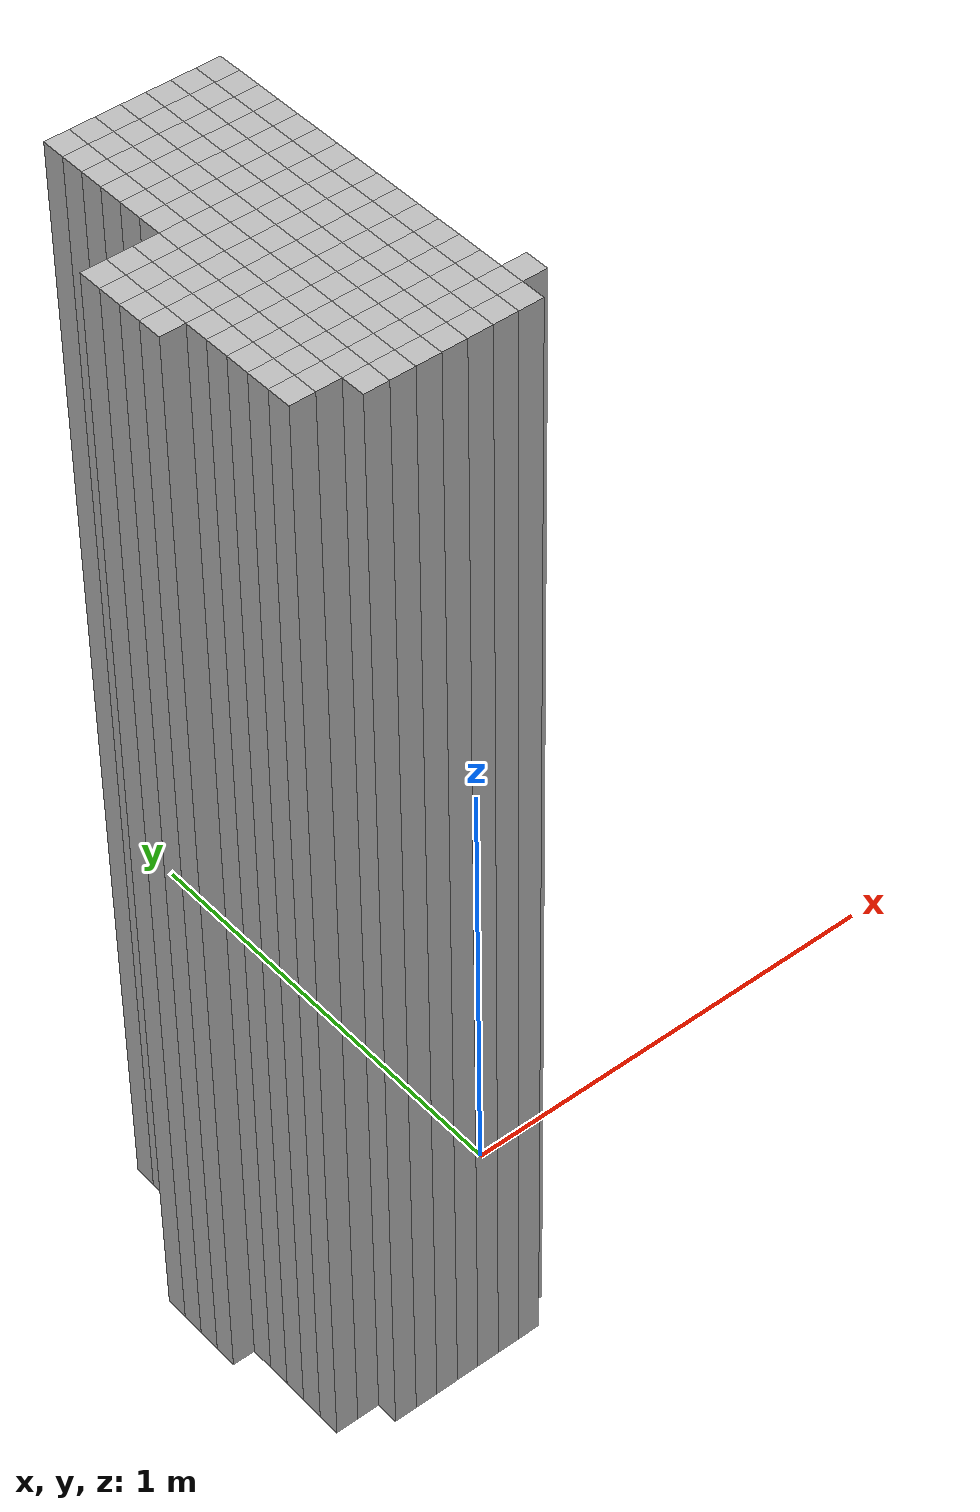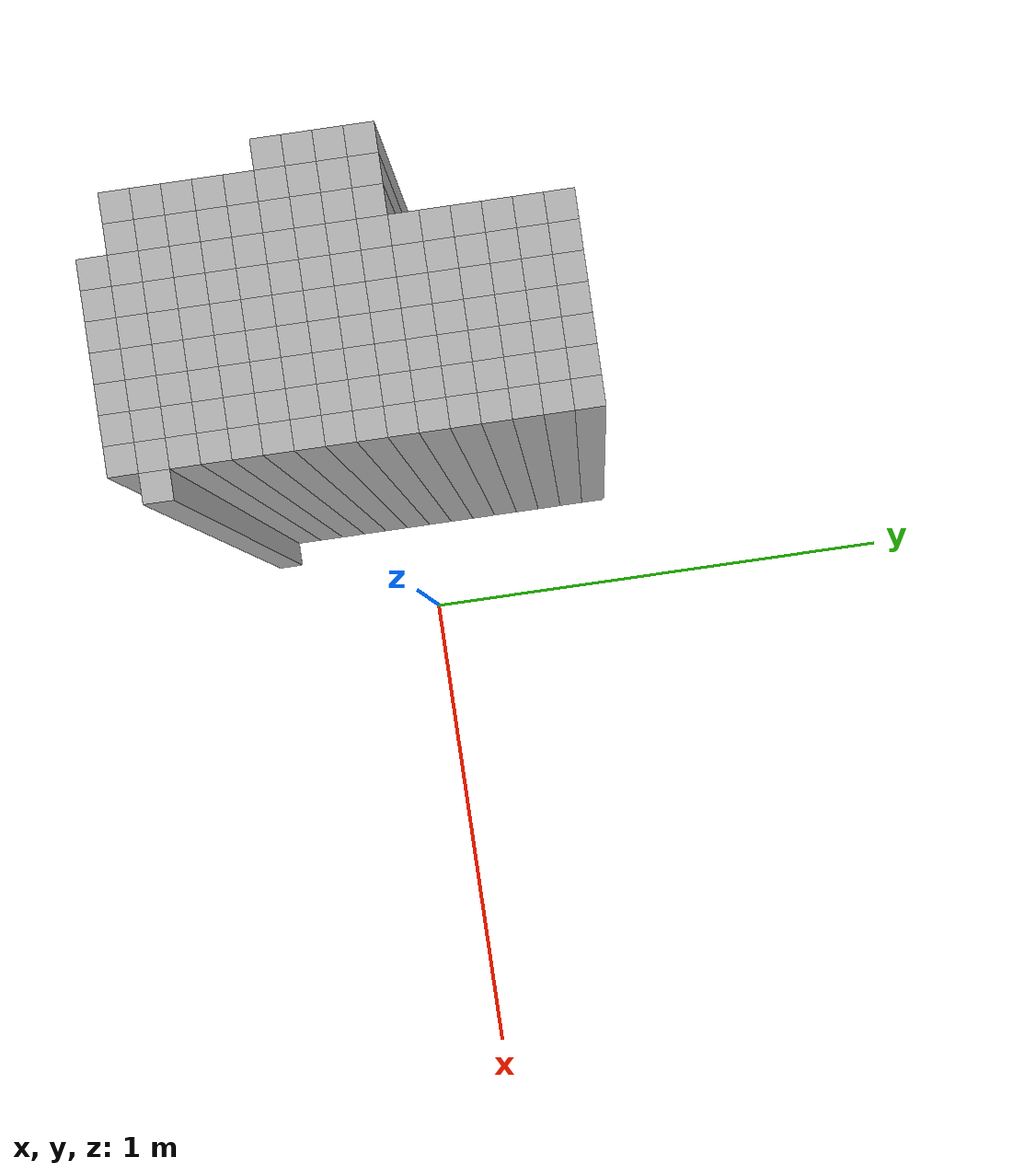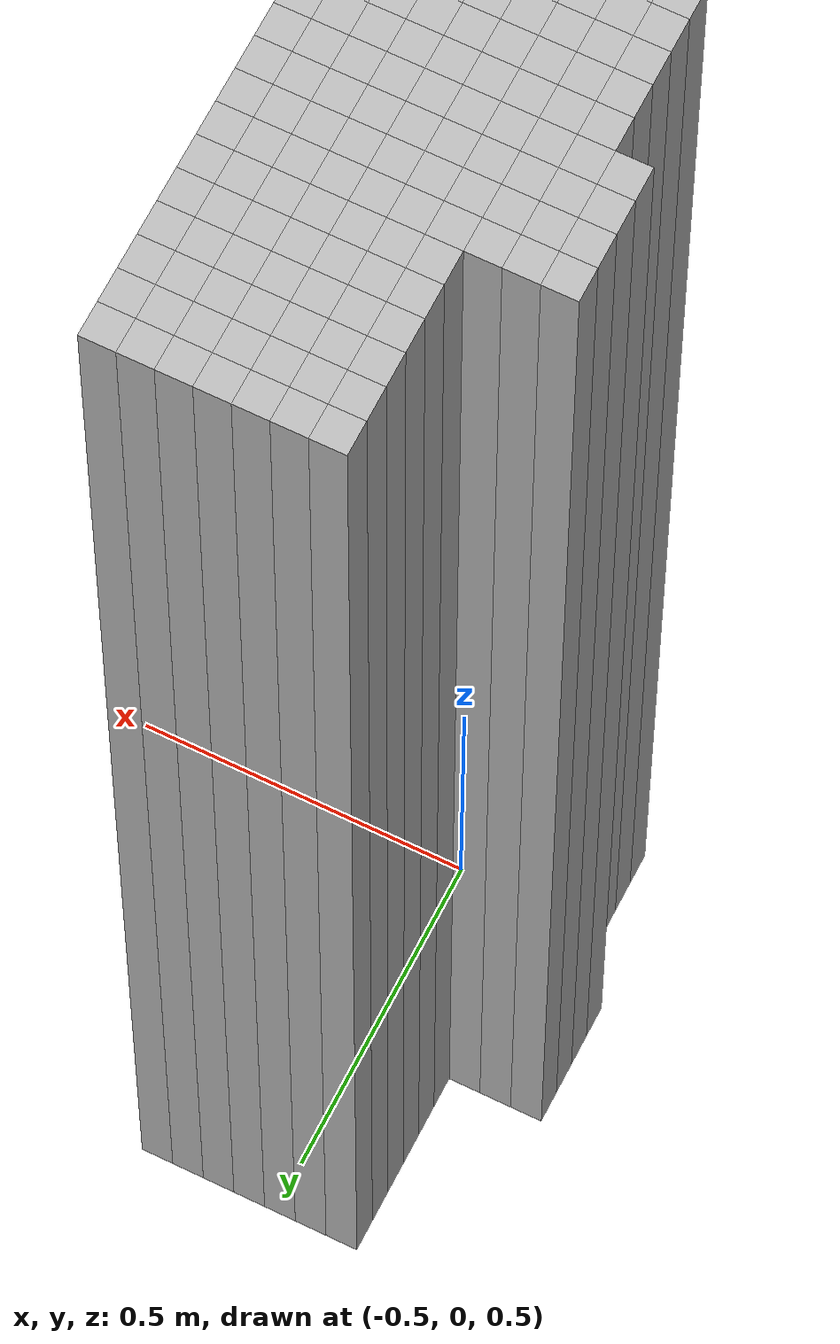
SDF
<sdf version="1.9">
 <world name="map_world">
  <model name="wall_213_146">
   <static>true</static>
   <pose>-0.511 0.380 1.250 0 0 0</pose>
   <link name="link">
    <collision name="collision"><geometry><box><size>0.050 0.050 2.500</size></box></geometry></collision>
    <visual name="visual"><geometry><box><size>0.050 0.050 2.500</size></box></geometry></visual>
   </link>
  </model>
  <model name="wall_214_146">
   <static>true</static>
   <pose>-0.461 0.380 1.250 0 0 0</pose>
   <link name="link">
    <collision name="collision"><geometry><box><size>0.050 0.050 2.500</size></box></geometry></collision>
    <visual name="visual"><geometry><box><size>0.050 0.050 2.500</size></box></geometry></visual>
   </link>
  </model>
  <model name="wall_215_146">
   <static>true</static>
   <pose>-0.411 0.380 1.250 0 0 0</pose>
   <link name="link">
    <collision name="collision"><geometry><box><size>0.050 0.050 2.500</size></box></geometry></collision>
    <visual name="visual"><geometry><box><size>0.050 0.050 2.500</size></box></geometry></visual>
   </link>
  </model>
  <model name="wall_216_146">
   <static>true</static>
   <pose>-0.361 0.380 1.250 0 0 0</pose>
   <link name="link">
    <collision name="collision"><geometry><box><size>0.050 0.050 2.500</size></box></geometry></collision>
    <visual name="visual"><geometry><box><size>0.050 0.050 2.500</size></box></geometry></visual>
   </link>
  </model>
  <model name="wall_217_146">
   <static>true</static>
   <pose>-0.311 0.380 1.250 0 0 0</pose>
   <link name="link">
    <collision name="collision"><geometry><box><size>0.050 0.050 2.500</size></box></geometry></collision>
    <visual name="visual"><geometry><box><size>0.050 0.050 2.500</size></box></geometry></visual>
   </link>
  </model>
  <model name="wall_218_146">
   <static>true</static>
   <pose>-0.261 0.380 1.250 0 0 0</pose>
   <link name="link">
    <collision name="collision"><geometry><box><size>0.050 0.050 2.500</size></box></geometry></collision>
    <visual name="visual"><geometry><box><size>0.050 0.050 2.500</size></box></geometry></visual>
   </link>
  </model>
  <model name="wall_219_146">
   <static>true</static>
   <pose>-0.211 0.380 1.250 0 0 0</pose>
   <link name="link">
    <collision name="collision"><geometry><box><size>0.050 0.050 2.500</size></box></geometry></collision>
    <visual name="visual"><geometry><box><size>0.050 0.050 2.500</size></box></geometry></visual>
   </link>
  </model>
  <model name="wall_213_147">
   <static>true</static>
   <pose>-0.511 0.330 1.250 0 0 0</pose>
   <link name="link">
    <collision name="collision"><geometry><box><size>0.050 0.050 2.500</size></box></geometry></collision>
    <visual name="visual"><geometry><box><size>0.050 0.050 2.500</size></box></geometry></visual>
   </link>
  </model>
  <model name="wall_214_147">
   <static>true</static>
   <pose>-0.461 0.330 1.250 0 0 0</pose>
   <link name="link">
    <collision name="collision"><geometry><box><size>0.050 0.050 2.500</size></box></geometry></collision>
    <visual name="visual"><geometry><box><size>0.050 0.050 2.500</size></box></geometry></visual>
   </link>
  </model>
  <model name="wall_215_147">
   <static>true</static>
   <pose>-0.411 0.330 1.250 0 0 0</pose>
   <link name="link">
    <collision name="collision"><geometry><box><size>0.050 0.050 2.500</size></box></geometry></collision>
    <visual name="visual"><geometry><box><size>0.050 0.050 2.500</size></box></geometry></visual>
   </link>
  </model>
  <model name="wall_216_147">
   <static>true</static>
   <pose>-0.361 0.330 1.250 0 0 0</pose>
   <link name="link">
    <collision name="collision"><geometry><box><size>0.050 0.050 2.500</size></box></geometry></collision>
    <visual name="visual"><geometry><box><size>0.050 0.050 2.500</size></box></geometry></visual>
   </link>
  </model>
  <model name="wall_217_147">
   <static>true</static>
   <pose>-0.311 0.330 1.250 0 0 0</pose>
   <link name="link">
    <collision name="collision"><geometry><box><size>0.050 0.050 2.500</size></box></geometry></collision>
    <visual name="visual"><geometry><box><size>0.050 0.050 2.500</size></box></geometry></visual>
   </link>
  </model>
  <model name="wall_218_147">
   <static>true</static>
   <pose>-0.261 0.330 1.250 0 0 0</pose>
   <link name="link">
    <collision name="collision"><geometry><box><size>0.050 0.050 2.500</size></box></geometry></collision>
    <visual name="visual"><geometry><box><size>0.050 0.050 2.500</size></box></geometry></visual>
   </link>
  </model>
  <model name="wall_219_147">
   <static>true</static>
   <pose>-0.211 0.330 1.250 0 0 0</pose>
   <link name="link">
    <collision name="collision"><geometry><box><size>0.050 0.050 2.500</size></box></geometry></collision>
    <visual name="visual"><geometry><box><size>0.050 0.050 2.500</size></box></geometry></visual>
   </link>
  </model>
  <model name="wall_213_148">
   <static>true</static>
   <pose>-0.511 0.280 1.250 0 0 0</pose>
   <link name="link">
    <collision name="collision"><geometry><box><size>0.050 0.050 2.500</size></box></geometry></collision>
    <visual name="visual"><geometry><box><size>0.050 0.050 2.500</size></box></geometry></visual>
   </link>
  </model>
  <model name="wall_214_148">
   <static>true</static>
   <pose>-0.461 0.280 1.250 0 0 0</pose>
   <link name="link">
    <collision name="collision"><geometry><box><size>0.050 0.050 2.500</size></box></geometry></collision>
    <visual name="visual"><geometry><box><size>0.050 0.050 2.500</size></box></geometry></visual>
   </link>
  </model>
  <model name="wall_215_148">
   <static>true</static>
   <pose>-0.411 0.280 1.250 0 0 0</pose>
   <link name="link">
    <collision name="collision"><geometry><box><size>0.050 0.050 2.500</size></box></geometry></collision>
    <visual name="visual"><geometry><box><size>0.050 0.050 2.500</size></box></geometry></visual>
   </link>
  </model>
  <model name="wall_216_148">
   <static>true</static>
   <pose>-0.361 0.280 1.250 0 0 0</pose>
   <link name="link">
    <collision name="collision"><geometry><box><size>0.050 0.050 2.500</size></box></geometry></collision>
    <visual name="visual"><geometry><box><size>0.050 0.050 2.500</size></box></geometry></visual>
   </link>
  </model>
  <model name="wall_217_148">
   <static>true</static>
   <pose>-0.311 0.280 1.250 0 0 0</pose>
   <link name="link">
    <collision name="collision"><geometry><box><size>0.050 0.050 2.500</size></box></geometry></collision>
    <visual name="visual"><geometry><box><size>0.050 0.050 2.500</size></box></geometry></visual>
   </link>
  </model>
  <model name="wall_218_148">
   <static>true</static>
   <pose>-0.261 0.280 1.250 0 0 0</pose>
   <link name="link">
    <collision name="collision"><geometry><box><size>0.050 0.050 2.500</size></box></geometry></collision>
    <visual name="visual"><geometry><box><size>0.050 0.050 2.500</size></box></geometry></visual>
   </link>
  </model>
  <model name="wall_219_148">
   <static>true</static>
   <pose>-0.211 0.280 1.250 0 0 0</pose>
   <link name="link">
    <collision name="collision"><geometry><box><size>0.050 0.050 2.500</size></box></geometry></collision>
    <visual name="visual"><geometry><box><size>0.050 0.050 2.500</size></box></geometry></visual>
   </link>
  </model>
  <model name="wall_213_149">
   <static>true</static>
   <pose>-0.511 0.230 1.250 0 0 0</pose>
   <link name="link">
    <collision name="collision"><geometry><box><size>0.050 0.050 2.500</size></box></geometry></collision>
    <visual name="visual"><geometry><box><size>0.050 0.050 2.500</size></box></geometry></visual>
   </link>
  </model>
  <model name="wall_214_149">
   <static>true</static>
   <pose>-0.461 0.230 1.250 0 0 0</pose>
   <link name="link">
    <collision name="collision"><geometry><box><size>0.050 0.050 2.500</size></box></geometry></collision>
    <visual name="visual"><geometry><box><size>0.050 0.050 2.500</size></box></geometry></visual>
   </link>
  </model>
  <model name="wall_215_149">
   <static>true</static>
   <pose>-0.411 0.230 1.250 0 0 0</pose>
   <link name="link">
    <collision name="collision"><geometry><box><size>0.050 0.050 2.500</size></box></geometry></collision>
    <visual name="visual"><geometry><box><size>0.050 0.050 2.500</size></box></geometry></visual>
   </link>
  </model>
  <model name="wall_216_149">
   <static>true</static>
   <pose>-0.361 0.230 1.250 0 0 0</pose>
   <link name="link">
    <collision name="collision"><geometry><box><size>0.050 0.050 2.500</size></box></geometry></collision>
    <visual name="visual"><geometry><box><size>0.050 0.050 2.500</size></box></geometry></visual>
   </link>
  </model>
  <model name="wall_217_149">
   <static>true</static>
   <pose>-0.311 0.230 1.250 0 0 0</pose>
   <link name="link">
    <collision name="collision"><geometry><box><size>0.050 0.050 2.500</size></box></geometry></collision>
    <visual name="visual"><geometry><box><size>0.050 0.050 2.500</size></box></geometry></visual>
   </link>
  </model>
  <model name="wall_218_149">
   <static>true</static>
   <pose>-0.261 0.230 1.250 0 0 0</pose>
   <link name="link">
    <collision name="collision"><geometry><box><size>0.050 0.050 2.500</size></box></geometry></collision>
    <visual name="visual"><geometry><box><size>0.050 0.050 2.500</size></box></geometry></visual>
   </link>
  </model>
  <model name="wall_219_149">
   <static>true</static>
   <pose>-0.211 0.230 1.250 0 0 0</pose>
   <link name="link">
    <collision name="collision"><geometry><box><size>0.050 0.050 2.500</size></box></geometry></collision>
    <visual name="visual"><geometry><box><size>0.050 0.050 2.500</size></box></geometry></visual>
   </link>
  </model>
  <model name="wall_213_150">
   <static>true</static>
   <pose>-0.511 0.180 1.250 0 0 0</pose>
   <link name="link">
    <collision name="collision"><geometry><box><size>0.050 0.050 2.500</size></box></geometry></collision>
    <visual name="visual"><geometry><box><size>0.050 0.050 2.500</size></box></geometry></visual>
   </link>
  </model>
  <model name="wall_214_150">
   <static>true</static>
   <pose>-0.461 0.180 1.250 0 0 0</pose>
   <link name="link">
    <collision name="collision"><geometry><box><size>0.050 0.050 2.500</size></box></geometry></collision>
    <visual name="visual"><geometry><box><size>0.050 0.050 2.500</size></box></geometry></visual>
   </link>
  </model>
  <model name="wall_215_150">
   <static>true</static>
   <pose>-0.411 0.180 1.250 0 0 0</pose>
   <link name="link">
    <collision name="collision"><geometry><box><size>0.050 0.050 2.500</size></box></geometry></collision>
    <visual name="visual"><geometry><box><size>0.050 0.050 2.500</size></box></geometry></visual>
   </link>
  </model>
  <model name="wall_216_150">
   <static>true</static>
   <pose>-0.361 0.180 1.250 0 0 0</pose>
   <link name="link">
    <collision name="collision"><geometry><box><size>0.050 0.050 2.500</size></box></geometry></collision>
    <visual name="visual"><geometry><box><size>0.050 0.050 2.500</size></box></geometry></visual>
   </link>
  </model>
  <model name="wall_217_150">
   <static>true</static>
   <pose>-0.311 0.180 1.250 0 0 0</pose>
   <link name="link">
    <collision name="collision"><geometry><box><size>0.050 0.050 2.500</size></box></geometry></collision>
    <visual name="visual"><geometry><box><size>0.050 0.050 2.500</size></box></geometry></visual>
   </link>
  </model>
  <model name="wall_218_150">
   <static>true</static>
   <pose>-0.261 0.180 1.250 0 0 0</pose>
   <link name="link">
    <collision name="collision"><geometry><box><size>0.050 0.050 2.500</size></box></geometry></collision>
    <visual name="visual"><geometry><box><size>0.050 0.050 2.500</size></box></geometry></visual>
   </link>
  </model>
  <model name="wall_219_150">
   <static>true</static>
   <pose>-0.211 0.180 1.250 0 0 0</pose>
   <link name="link">
    <collision name="collision"><geometry><box><size>0.050 0.050 2.500</size></box></geometry></collision>
    <visual name="visual"><geometry><box><size>0.050 0.050 2.500</size></box></geometry></visual>
   </link>
  </model>
  <model name="wall_213_151">
   <static>true</static>
   <pose>-0.511 0.130 1.250 0 0 0</pose>
   <link name="link">
    <collision name="collision"><geometry><box><size>0.050 0.050 2.500</size></box></geometry></collision>
    <visual name="visual"><geometry><box><size>0.050 0.050 2.500</size></box></geometry></visual>
   </link>
  </model>
  <model name="wall_214_151">
   <static>true</static>
   <pose>-0.461 0.130 1.250 0 0 0</pose>
   <link name="link">
    <collision name="collision"><geometry><box><size>0.050 0.050 2.500</size></box></geometry></collision>
    <visual name="visual"><geometry><box><size>0.050 0.050 2.500</size></box></geometry></visual>
   </link>
  </model>
  <model name="wall_215_151">
   <static>true</static>
   <pose>-0.411 0.130 1.250 0 0 0</pose>
   <link name="link">
    <collision name="collision"><geometry><box><size>0.050 0.050 2.500</size></box></geometry></collision>
    <visual name="visual"><geometry><box><size>0.050 0.050 2.500</size></box></geometry></visual>
   </link>
  </model>
  <model name="wall_216_151">
   <static>true</static>
   <pose>-0.361 0.130 1.250 0 0 0</pose>
   <link name="link">
    <collision name="collision"><geometry><box><size>0.050 0.050 2.500</size></box></geometry></collision>
    <visual name="visual"><geometry><box><size>0.050 0.050 2.500</size></box></geometry></visual>
   </link>
  </model>
  <model name="wall_217_151">
   <static>true</static>
   <pose>-0.311 0.130 1.250 0 0 0</pose>
   <link name="link">
    <collision name="collision"><geometry><box><size>0.050 0.050 2.500</size></box></geometry></collision>
    <visual name="visual"><geometry><box><size>0.050 0.050 2.500</size></box></geometry></visual>
   </link>
  </model>
  <model name="wall_218_151">
   <static>true</static>
   <pose>-0.261 0.130 1.250 0 0 0</pose>
   <link name="link">
    <collision name="collision"><geometry><box><size>0.050 0.050 2.500</size></box></geometry></collision>
    <visual name="visual"><geometry><box><size>0.050 0.050 2.500</size></box></geometry></visual>
   </link>
  </model>
  <model name="wall_219_151">
   <static>true</static>
   <pose>-0.211 0.130 1.250 0 0 0</pose>
   <link name="link">
    <collision name="collision"><geometry><box><size>0.050 0.050 2.500</size></box></geometry></collision>
    <visual name="visual"><geometry><box><size>0.050 0.050 2.500</size></box></geometry></visual>
   </link>
  </model>
  <model name="wall_210_152">
   <static>true</static>
   <pose>-0.661 0.080 1.250 0 0 0</pose>
   <link name="link">
    <collision name="collision"><geometry><box><size>0.050 0.050 2.500</size></box></geometry></collision>
    <visual name="visual"><geometry><box><size>0.050 0.050 2.500</size></box></geometry></visual>
   </link>
  </model>
  <model name="wall_211_152">
   <static>true</static>
   <pose>-0.611 0.080 1.250 0 0 0</pose>
   <link name="link">
    <collision name="collision"><geometry><box><size>0.050 0.050 2.500</size></box></geometry></collision>
    <visual name="visual"><geometry><box><size>0.050 0.050 2.500</size></box></geometry></visual>
   </link>
  </model>
  <model name="wall_212_152">
   <static>true</static>
   <pose>-0.561 0.080 1.250 0 0 0</pose>
   <link name="link">
    <collision name="collision"><geometry><box><size>0.050 0.050 2.500</size></box></geometry></collision>
    <visual name="visual"><geometry><box><size>0.050 0.050 2.500</size></box></geometry></visual>
   </link>
  </model>
  <model name="wall_213_152">
   <static>true</static>
   <pose>-0.511 0.080 1.250 0 0 0</pose>
   <link name="link">
    <collision name="collision"><geometry><box><size>0.050 0.050 2.500</size></box></geometry></collision>
    <visual name="visual"><geometry><box><size>0.050 0.050 2.500</size></box></geometry></visual>
   </link>
  </model>
  <model name="wall_214_152">
   <static>true</static>
   <pose>-0.461 0.080 1.250 0 0 0</pose>
   <link name="link">
    <collision name="collision"><geometry><box><size>0.050 0.050 2.500</size></box></geometry></collision>
    <visual name="visual"><geometry><box><size>0.050 0.050 2.500</size></box></geometry></visual>
   </link>
  </model>
  <model name="wall_215_152">
   <static>true</static>
   <pose>-0.411 0.080 1.250 0 0 0</pose>
   <link name="link">
    <collision name="collision"><geometry><box><size>0.050 0.050 2.500</size></box></geometry></collision>
    <visual name="visual"><geometry><box><size>0.050 0.050 2.500</size></box></geometry></visual>
   </link>
  </model>
  <model name="wall_216_152">
   <static>true</static>
   <pose>-0.361 0.080 1.250 0 0 0</pose>
   <link name="link">
    <collision name="collision"><geometry><box><size>0.050 0.050 2.500</size></box></geometry></collision>
    <visual name="visual"><geometry><box><size>0.050 0.050 2.500</size></box></geometry></visual>
   </link>
  </model>
  <model name="wall_217_152">
   <static>true</static>
   <pose>-0.311 0.080 1.250 0 0 0</pose>
   <link name="link">
    <collision name="collision"><geometry><box><size>0.050 0.050 2.500</size></box></geometry></collision>
    <visual name="visual"><geometry><box><size>0.050 0.050 2.500</size></box></geometry></visual>
   </link>
  </model>
  <model name="wall_218_152">
   <static>true</static>
   <pose>-0.261 0.080 1.250 0 0 0</pose>
   <link name="link">
    <collision name="collision"><geometry><box><size>0.050 0.050 2.500</size></box></geometry></collision>
    <visual name="visual"><geometry><box><size>0.050 0.050 2.500</size></box></geometry></visual>
   </link>
  </model>
  <model name="wall_219_152">
   <static>true</static>
   <pose>-0.211 0.080 1.250 0 0 0</pose>
   <link name="link">
    <collision name="collision"><geometry><box><size>0.050 0.050 2.500</size></box></geometry></collision>
    <visual name="visual"><geometry><box><size>0.050 0.050 2.500</size></box></geometry></visual>
   </link>
  </model>
  <model name="wall_210_153">
   <static>true</static>
   <pose>-0.661 0.030 1.250 0 0 0</pose>
   <link name="link">
    <collision name="collision"><geometry><box><size>0.050 0.050 2.500</size></box></geometry></collision>
    <visual name="visual"><geometry><box><size>0.050 0.050 2.500</size></box></geometry></visual>
   </link>
  </model>
  <model name="wall_211_153">
   <static>true</static>
   <pose>-0.611 0.030 1.250 0 0 0</pose>
   <link name="link">
    <collision name="collision"><geometry><box><size>0.050 0.050 2.500</size></box></geometry></collision>
    <visual name="visual"><geometry><box><size>0.050 0.050 2.500</size></box></geometry></visual>
   </link>
  </model>
  <model name="wall_212_153">
   <static>true</static>
   <pose>-0.561 0.030 1.250 0 0 0</pose>
   <link name="link">
    <collision name="collision"><geometry><box><size>0.050 0.050 2.500</size></box></geometry></collision>
    <visual name="visual"><geometry><box><size>0.050 0.050 2.500</size></box></geometry></visual>
   </link>
  </model>
  <model name="wall_213_153">
   <static>true</static>
   <pose>-0.511 0.030 1.250 0 0 0</pose>
   <link name="link">
    <collision name="collision"><geometry><box><size>0.050 0.050 2.500</size></box></geometry></collision>
    <visual name="visual"><geometry><box><size>0.050 0.050 2.500</size></box></geometry></visual>
   </link>
  </model>
  <model name="wall_214_153">
   <static>true</static>
   <pose>-0.461 0.030 1.250 0 0 0</pose>
   <link name="link">
    <collision name="collision"><geometry><box><size>0.050 0.050 2.500</size></box></geometry></collision>
    <visual name="visual"><geometry><box><size>0.050 0.050 2.500</size></box></geometry></visual>
   </link>
  </model>
  <model name="wall_215_153">
   <static>true</static>
   <pose>-0.411 0.030 1.250 0 0 0</pose>
   <link name="link">
    <collision name="collision"><geometry><box><size>0.050 0.050 2.500</size></box></geometry></collision>
    <visual name="visual"><geometry><box><size>0.050 0.050 2.500</size></box></geometry></visual>
   </link>
  </model>
  <model name="wall_216_153">
   <static>true</static>
   <pose>-0.361 0.030 1.250 0 0 0</pose>
   <link name="link">
    <collision name="collision"><geometry><box><size>0.050 0.050 2.500</size></box></geometry></collision>
    <visual name="visual"><geometry><box><size>0.050 0.050 2.500</size></box></geometry></visual>
   </link>
  </model>
  <model name="wall_217_153">
   <static>true</static>
   <pose>-0.311 0.030 1.250 0 0 0</pose>
   <link name="link">
    <collision name="collision"><geometry><box><size>0.050 0.050 2.500</size></box></geometry></collision>
    <visual name="visual"><geometry><box><size>0.050 0.050 2.500</size></box></geometry></visual>
   </link>
  </model>
  <model name="wall_218_153">
   <static>true</static>
   <pose>-0.261 0.030 1.250 0 0 0</pose>
   <link name="link">
    <collision name="collision"><geometry><box><size>0.050 0.050 2.500</size></box></geometry></collision>
    <visual name="visual"><geometry><box><size>0.050 0.050 2.500</size></box></geometry></visual>
   </link>
  </model>
  <model name="wall_219_153">
   <static>true</static>
   <pose>-0.211 0.030 1.250 0 0 0</pose>
   <link name="link">
    <collision name="collision"><geometry><box><size>0.050 0.050 2.500</size></box></geometry></collision>
    <visual name="visual"><geometry><box><size>0.050 0.050 2.500</size></box></geometry></visual>
   </link>
  </model>
  <model name="wall_210_154">
   <static>true</static>
   <pose>-0.661 -0.020 1.250 0 0 0</pose>
   <link name="link">
    <collision name="collision"><geometry><box><size>0.050 0.050 2.500</size></box></geometry></collision>
    <visual name="visual"><geometry><box><size>0.050 0.050 2.500</size></box></geometry></visual>
   </link>
  </model>
  <model name="wall_211_154">
   <static>true</static>
   <pose>-0.611 -0.020 1.250 0 0 0</pose>
   <link name="link">
    <collision name="collision"><geometry><box><size>0.050 0.050 2.500</size></box></geometry></collision>
    <visual name="visual"><geometry><box><size>0.050 0.050 2.500</size></box></geometry></visual>
   </link>
  </model>
  <model name="wall_212_154">
   <static>true</static>
   <pose>-0.561 -0.020 1.250 0 0 0</pose>
   <link name="link">
    <collision name="collision"><geometry><box><size>0.050 0.050 2.500</size></box></geometry></collision>
    <visual name="visual"><geometry><box><size>0.050 0.050 2.500</size></box></geometry></visual>
   </link>
  </model>
  <model name="wall_213_154">
   <static>true</static>
   <pose>-0.511 -0.020 1.250 0 0 0</pose>
   <link name="link">
    <collision name="collision"><geometry><box><size>0.050 0.050 2.500</size></box></geometry></collision>
    <visual name="visual"><geometry><box><size>0.050 0.050 2.500</size></box></geometry></visual>
   </link>
  </model>
  <model name="wall_214_154">
   <static>true</static>
   <pose>-0.461 -0.020 1.250 0 0 0</pose>
   <link name="link">
    <collision name="collision"><geometry><box><size>0.050 0.050 2.500</size></box></geometry></collision>
    <visual name="visual"><geometry><box><size>0.050 0.050 2.500</size></box></geometry></visual>
   </link>
  </model>
  <model name="wall_215_154">
   <static>true</static>
   <pose>-0.411 -0.020 1.250 0 0 0</pose>
   <link name="link">
    <collision name="collision"><geometry><box><size>0.050 0.050 2.500</size></box></geometry></collision>
    <visual name="visual"><geometry><box><size>0.050 0.050 2.500</size></box></geometry></visual>
   </link>
  </model>
  <model name="wall_216_154">
   <static>true</static>
   <pose>-0.361 -0.020 1.250 0 0 0</pose>
   <link name="link">
    <collision name="collision"><geometry><box><size>0.050 0.050 2.500</size></box></geometry></collision>
    <visual name="visual"><geometry><box><size>0.050 0.050 2.500</size></box></geometry></visual>
   </link>
  </model>
  <model name="wall_217_154">
   <static>true</static>
   <pose>-0.311 -0.020 1.250 0 0 0</pose>
   <link name="link">
    <collision name="collision"><geometry><box><size>0.050 0.050 2.500</size></box></geometry></collision>
    <visual name="visual"><geometry><box><size>0.050 0.050 2.500</size></box></geometry></visual>
   </link>
  </model>
  <model name="wall_218_154">
   <static>true</static>
   <pose>-0.261 -0.020 1.250 0 0 0</pose>
   <link name="link">
    <collision name="collision"><geometry><box><size>0.050 0.050 2.500</size></box></geometry></collision>
    <visual name="visual"><geometry><box><size>0.050 0.050 2.500</size></box></geometry></visual>
   </link>
  </model>
  <model name="wall_219_154">
   <static>true</static>
   <pose>-0.211 -0.020 1.250 0 0 0</pose>
   <link name="link">
    <collision name="collision"><geometry><box><size>0.050 0.050 2.500</size></box></geometry></collision>
    <visual name="visual"><geometry><box><size>0.050 0.050 2.500</size></box></geometry></visual>
   </link>
  </model>
  <model name="wall_210_155">
   <static>true</static>
   <pose>-0.661 -0.070 1.250 0 0 0</pose>
   <link name="link">
    <collision name="collision"><geometry><box><size>0.050 0.050 2.500</size></box></geometry></collision>
    <visual name="visual"><geometry><box><size>0.050 0.050 2.500</size></box></geometry></visual>
   </link>
  </model>
  <model name="wall_211_155">
   <static>true</static>
   <pose>-0.611 -0.070 1.250 0 0 0</pose>
   <link name="link">
    <collision name="collision"><geometry><box><size>0.050 0.050 2.500</size></box></geometry></collision>
    <visual name="visual"><geometry><box><size>0.050 0.050 2.500</size></box></geometry></visual>
   </link>
  </model>
  <model name="wall_212_155">
   <static>true</static>
   <pose>-0.561 -0.070 1.250 0 0 0</pose>
   <link name="link">
    <collision name="collision"><geometry><box><size>0.050 0.050 2.500</size></box></geometry></collision>
    <visual name="visual"><geometry><box><size>0.050 0.050 2.500</size></box></geometry></visual>
   </link>
  </model>
  <model name="wall_213_155">
   <static>true</static>
   <pose>-0.511 -0.070 1.250 0 0 0</pose>
   <link name="link">
    <collision name="collision"><geometry><box><size>0.050 0.050 2.500</size></box></geometry></collision>
    <visual name="visual"><geometry><box><size>0.050 0.050 2.500</size></box></geometry></visual>
   </link>
  </model>
  <model name="wall_214_155">
   <static>true</static>
   <pose>-0.461 -0.070 1.250 0 0 0</pose>
   <link name="link">
    <collision name="collision"><geometry><box><size>0.050 0.050 2.500</size></box></geometry></collision>
    <visual name="visual"><geometry><box><size>0.050 0.050 2.500</size></box></geometry></visual>
   </link>
  </model>
  <model name="wall_215_155">
   <static>true</static>
   <pose>-0.411 -0.070 1.250 0 0 0</pose>
   <link name="link">
    <collision name="collision"><geometry><box><size>0.050 0.050 2.500</size></box></geometry></collision>
    <visual name="visual"><geometry><box><size>0.050 0.050 2.500</size></box></geometry></visual>
   </link>
  </model>
  <model name="wall_216_155">
   <static>true</static>
   <pose>-0.361 -0.070 1.250 0 0 0</pose>
   <link name="link">
    <collision name="collision"><geometry><box><size>0.050 0.050 2.500</size></box></geometry></collision>
    <visual name="visual"><geometry><box><size>0.050 0.050 2.500</size></box></geometry></visual>
   </link>
  </model>
  <model name="wall_217_155">
   <static>true</static>
   <pose>-0.311 -0.070 1.250 0 0 0</pose>
   <link name="link">
    <collision name="collision"><geometry><box><size>0.050 0.050 2.500</size></box></geometry></collision>
    <visual name="visual"><geometry><box><size>0.050 0.050 2.500</size></box></geometry></visual>
   </link>
  </model>
  <model name="wall_218_155">
   <static>true</static>
   <pose>-0.261 -0.070 1.250 0 0 0</pose>
   <link name="link">
    <collision name="collision"><geometry><box><size>0.050 0.050 2.500</size></box></geometry></collision>
    <visual name="visual"><geometry><box><size>0.050 0.050 2.500</size></box></geometry></visual>
   </link>
  </model>
  <model name="wall_219_155">
   <static>true</static>
   <pose>-0.211 -0.070 1.250 0 0 0</pose>
   <link name="link">
    <collision name="collision"><geometry><box><size>0.050 0.050 2.500</size></box></geometry></collision>
    <visual name="visual"><geometry><box><size>0.050 0.050 2.500</size></box></geometry></visual>
   </link>
  </model>
  <model name="wall_211_156">
   <static>true</static>
   <pose>-0.611 -0.120 1.250 0 0 0</pose>
   <link name="link">
    <collision name="collision"><geometry><box><size>0.050 0.050 2.500</size></box></geometry></collision>
    <visual name="visual"><geometry><box><size>0.050 0.050 2.500</size></box></geometry></visual>
   </link>
  </model>
  <model name="wall_212_156">
   <static>true</static>
   <pose>-0.561 -0.120 1.250 0 0 0</pose>
   <link name="link">
    <collision name="collision"><geometry><box><size>0.050 0.050 2.500</size></box></geometry></collision>
    <visual name="visual"><geometry><box><size>0.050 0.050 2.500</size></box></geometry></visual>
   </link>
  </model>
  <model name="wall_213_156">
   <static>true</static>
   <pose>-0.511 -0.120 1.250 0 0 0</pose>
   <link name="link">
    <collision name="collision"><geometry><box><size>0.050 0.050 2.500</size></box></geometry></collision>
    <visual name="visual"><geometry><box><size>0.050 0.050 2.500</size></box></geometry></visual>
   </link>
  </model>
  <model name="wall_214_156">
   <static>true</static>
   <pose>-0.461 -0.120 1.250 0 0 0</pose>
   <link name="link">
    <collision name="collision"><geometry><box><size>0.050 0.050 2.500</size></box></geometry></collision>
    <visual name="visual"><geometry><box><size>0.050 0.050 2.500</size></box></geometry></visual>
   </link>
  </model>
  <model name="wall_215_156">
   <static>true</static>
   <pose>-0.411 -0.120 1.250 0 0 0</pose>
   <link name="link">
    <collision name="collision"><geometry><box><size>0.050 0.050 2.500</size></box></geometry></collision>
    <visual name="visual"><geometry><box><size>0.050 0.050 2.500</size></box></geometry></visual>
   </link>
  </model>
  <model name="wall_216_156">
   <static>true</static>
   <pose>-0.361 -0.120 1.250 0 0 0</pose>
   <link name="link">
    <collision name="collision"><geometry><box><size>0.050 0.050 2.500</size></box></geometry></collision>
    <visual name="visual"><geometry><box><size>0.050 0.050 2.500</size></box></geometry></visual>
   </link>
  </model>
  <model name="wall_217_156">
   <static>true</static>
   <pose>-0.311 -0.120 1.250 0 0 0</pose>
   <link name="link">
    <collision name="collision"><geometry><box><size>0.050 0.050 2.500</size></box></geometry></collision>
    <visual name="visual"><geometry><box><size>0.050 0.050 2.500</size></box></geometry></visual>
   </link>
  </model>
  <model name="wall_218_156">
   <static>true</static>
   <pose>-0.261 -0.120 1.250 0 0 0</pose>
   <link name="link">
    <collision name="collision"><geometry><box><size>0.050 0.050 2.500</size></box></geometry></collision>
    <visual name="visual"><geometry><box><size>0.050 0.050 2.500</size></box></geometry></visual>
   </link>
  </model>
  <model name="wall_219_156">
   <static>true</static>
   <pose>-0.211 -0.120 1.250 0 0 0</pose>
   <link name="link">
    <collision name="collision"><geometry><box><size>0.050 0.050 2.500</size></box></geometry></collision>
    <visual name="visual"><geometry><box><size>0.050 0.050 2.500</size></box></geometry></visual>
   </link>
  </model>
  <model name="wall_211_157">
   <static>true</static>
   <pose>-0.611 -0.170 1.250 0 0 0</pose>
   <link name="link">
    <collision name="collision"><geometry><box><size>0.050 0.050 2.500</size></box></geometry></collision>
    <visual name="visual"><geometry><box><size>0.050 0.050 2.500</size></box></geometry></visual>
   </link>
  </model>
  <model name="wall_212_157">
   <static>true</static>
   <pose>-0.561 -0.170 1.250 0 0 0</pose>
   <link name="link">
    <collision name="collision"><geometry><box><size>0.050 0.050 2.500</size></box></geometry></collision>
    <visual name="visual"><geometry><box><size>0.050 0.050 2.500</size></box></geometry></visual>
   </link>
  </model>
  <model name="wall_213_157">
   <static>true</static>
   <pose>-0.511 -0.170 1.250 0 0 0</pose>
   <link name="link">
    <collision name="collision"><geometry><box><size>0.050 0.050 2.500</size></box></geometry></collision>
    <visual name="visual"><geometry><box><size>0.050 0.050 2.500</size></box></geometry></visual>
   </link>
  </model>
  <model name="wall_214_157">
   <static>true</static>
   <pose>-0.461 -0.170 1.250 0 0 0</pose>
   <link name="link">
    <collision name="collision"><geometry><box><size>0.050 0.050 2.500</size></box></geometry></collision>
    <visual name="visual"><geometry><box><size>0.050 0.050 2.500</size></box></geometry></visual>
   </link>
  </model>
  <model name="wall_215_157">
   <static>true</static>
   <pose>-0.411 -0.170 1.250 0 0 0</pose>
   <link name="link">
    <collision name="collision"><geometry><box><size>0.050 0.050 2.500</size></box></geometry></collision>
    <visual name="visual"><geometry><box><size>0.050 0.050 2.500</size></box></geometry></visual>
   </link>
  </model>
  <model name="wall_216_157">
   <static>true</static>
   <pose>-0.361 -0.170 1.250 0 0 0</pose>
   <link name="link">
    <collision name="collision"><geometry><box><size>0.050 0.050 2.500</size></box></geometry></collision>
    <visual name="visual"><geometry><box><size>0.050 0.050 2.500</size></box></geometry></visual>
   </link>
  </model>
  <model name="wall_217_157">
   <static>true</static>
   <pose>-0.311 -0.170 1.250 0 0 0</pose>
   <link name="link">
    <collision name="collision"><geometry><box><size>0.050 0.050 2.500</size></box></geometry></collision>
    <visual name="visual"><geometry><box><size>0.050 0.050 2.500</size></box></geometry></visual>
   </link>
  </model>
  <model name="wall_218_157">
   <static>true</static>
   <pose>-0.261 -0.170 1.250 0 0 0</pose>
   <link name="link">
    <collision name="collision"><geometry><box><size>0.050 0.050 2.500</size></box></geometry></collision>
    <visual name="visual"><geometry><box><size>0.050 0.050 2.500</size></box></geometry></visual>
   </link>
  </model>
  <model name="wall_219_157">
   <static>true</static>
   <pose>-0.211 -0.170 1.250 0 0 0</pose>
   <link name="link">
    <collision name="collision"><geometry><box><size>0.050 0.050 2.500</size></box></geometry></collision>
    <visual name="visual"><geometry><box><size>0.050 0.050 2.500</size></box></geometry></visual>
   </link>
  </model>
  <model name="wall_211_158">
   <static>true</static>
   <pose>-0.611 -0.220 1.250 0 0 0</pose>
   <link name="link">
    <collision name="collision"><geometry><box><size>0.050 0.050 2.500</size></box></geometry></collision>
    <visual name="visual"><geometry><box><size>0.050 0.050 2.500</size></box></geometry></visual>
   </link>
  </model>
  <model name="wall_212_158">
   <static>true</static>
   <pose>-0.561 -0.220 1.250 0 0 0</pose>
   <link name="link">
    <collision name="collision"><geometry><box><size>0.050 0.050 2.500</size></box></geometry></collision>
    <visual name="visual"><geometry><box><size>0.050 0.050 2.500</size></box></geometry></visual>
   </link>
  </model>
  <model name="wall_213_158">
   <static>true</static>
   <pose>-0.511 -0.220 1.250 0 0 0</pose>
   <link name="link">
    <collision name="collision"><geometry><box><size>0.050 0.050 2.500</size></box></geometry></collision>
    <visual name="visual"><geometry><box><size>0.050 0.050 2.500</size></box></geometry></visual>
   </link>
  </model>
  <model name="wall_214_158">
   <static>true</static>
   <pose>-0.461 -0.220 1.250 0 0 0</pose>
   <link name="link">
    <collision name="collision"><geometry><box><size>0.050 0.050 2.500</size></box></geometry></collision>
    <visual name="visual"><geometry><box><size>0.050 0.050 2.500</size></box></geometry></visual>
   </link>
  </model>
  <model name="wall_215_158">
   <static>true</static>
   <pose>-0.411 -0.220 1.250 0 0 0</pose>
   <link name="link">
    <collision name="collision"><geometry><box><size>0.050 0.050 2.500</size></box></geometry></collision>
    <visual name="visual"><geometry><box><size>0.050 0.050 2.500</size></box></geometry></visual>
   </link>
  </model>
  <model name="wall_216_158">
   <static>true</static>
   <pose>-0.361 -0.220 1.250 0 0 0</pose>
   <link name="link">
    <collision name="collision"><geometry><box><size>0.050 0.050 2.500</size></box></geometry></collision>
    <visual name="visual"><geometry><box><size>0.050 0.050 2.500</size></box></geometry></visual>
   </link>
  </model>
  <model name="wall_217_158">
   <static>true</static>
   <pose>-0.311 -0.220 1.250 0 0 0</pose>
   <link name="link">
    <collision name="collision"><geometry><box><size>0.050 0.050 2.500</size></box></geometry></collision>
    <visual name="visual"><geometry><box><size>0.050 0.050 2.500</size></box></geometry></visual>
   </link>
  </model>
  <model name="wall_218_158">
   <static>true</static>
   <pose>-0.261 -0.220 1.250 0 0 0</pose>
   <link name="link">
    <collision name="collision"><geometry><box><size>0.050 0.050 2.500</size></box></geometry></collision>
    <visual name="visual"><geometry><box><size>0.050 0.050 2.500</size></box></geometry></visual>
   </link>
  </model>
  <model name="wall_219_158">
   <static>true</static>
   <pose>-0.211 -0.220 1.250 0 0 0</pose>
   <link name="link">
    <collision name="collision"><geometry><box><size>0.050 0.050 2.500</size></box></geometry></collision>
    <visual name="visual"><geometry><box><size>0.050 0.050 2.500</size></box></geometry></visual>
   </link>
  </model>
  <model name="wall_211_159">
   <static>true</static>
   <pose>-0.611 -0.270 1.250 0 0 0</pose>
   <link name="link">
    <collision name="collision"><geometry><box><size>0.050 0.050 2.500</size></box></geometry></collision>
    <visual name="visual"><geometry><box><size>0.050 0.050 2.500</size></box></geometry></visual>
   </link>
  </model>
  <model name="wall_212_159">
   <static>true</static>
   <pose>-0.561 -0.270 1.250 0 0 0</pose>
   <link name="link">
    <collision name="collision"><geometry><box><size>0.050 0.050 2.500</size></box></geometry></collision>
    <visual name="visual"><geometry><box><size>0.050 0.050 2.500</size></box></geometry></visual>
   </link>
  </model>
  <model name="wall_213_159">
   <static>true</static>
   <pose>-0.511 -0.270 1.250 0 0 0</pose>
   <link name="link">
    <collision name="collision"><geometry><box><size>0.050 0.050 2.500</size></box></geometry></collision>
    <visual name="visual"><geometry><box><size>0.050 0.050 2.500</size></box></geometry></visual>
   </link>
  </model>
  <model name="wall_214_159">
   <static>true</static>
   <pose>-0.461 -0.270 1.250 0 0 0</pose>
   <link name="link">
    <collision name="collision"><geometry><box><size>0.050 0.050 2.500</size></box></geometry></collision>
    <visual name="visual"><geometry><box><size>0.050 0.050 2.500</size></box></geometry></visual>
   </link>
  </model>
  <model name="wall_215_159">
   <static>true</static>
   <pose>-0.411 -0.270 1.250 0 0 0</pose>
   <link name="link">
    <collision name="collision"><geometry><box><size>0.050 0.050 2.500</size></box></geometry></collision>
    <visual name="visual"><geometry><box><size>0.050 0.050 2.500</size></box></geometry></visual>
   </link>
  </model>
  <model name="wall_216_159">
   <static>true</static>
   <pose>-0.361 -0.270 1.250 0 0 0</pose>
   <link name="link">
    <collision name="collision"><geometry><box><size>0.050 0.050 2.500</size></box></geometry></collision>
    <visual name="visual"><geometry><box><size>0.050 0.050 2.500</size></box></geometry></visual>
   </link>
  </model>
  <model name="wall_217_159">
   <static>true</static>
   <pose>-0.311 -0.270 1.250 0 0 0</pose>
   <link name="link">
    <collision name="collision"><geometry><box><size>0.050 0.050 2.500</size></box></geometry></collision>
    <visual name="visual"><geometry><box><size>0.050 0.050 2.500</size></box></geometry></visual>
   </link>
  </model>
  <model name="wall_218_159">
   <static>true</static>
   <pose>-0.261 -0.270 1.250 0 0 0</pose>
   <link name="link">
    <collision name="collision"><geometry><box><size>0.050 0.050 2.500</size></box></geometry></collision>
    <visual name="visual"><geometry><box><size>0.050 0.050 2.500</size></box></geometry></visual>
   </link>
  </model>
  <model name="wall_219_159">
   <static>true</static>
   <pose>-0.211 -0.270 1.250 0 0 0</pose>
   <link name="link">
    <collision name="collision"><geometry><box><size>0.050 0.050 2.500</size></box></geometry></collision>
    <visual name="visual"><geometry><box><size>0.050 0.050 2.500</size></box></geometry></visual>
   </link>
  </model>
  <model name="wall_211_160">
   <static>true</static>
   <pose>-0.611 -0.320 1.250 0 0 0</pose>
   <link name="link">
    <collision name="collision"><geometry><box><size>0.050 0.050 2.500</size></box></geometry></collision>
    <visual name="visual"><geometry><box><size>0.050 0.050 2.500</size></box></geometry></visual>
   </link>
  </model>
  <model name="wall_212_160">
   <static>true</static>
   <pose>-0.561 -0.320 1.250 0 0 0</pose>
   <link name="link">
    <collision name="collision"><geometry><box><size>0.050 0.050 2.500</size></box></geometry></collision>
    <visual name="visual"><geometry><box><size>0.050 0.050 2.500</size></box></geometry></visual>
   </link>
  </model>
  <model name="wall_213_160">
   <static>true</static>
   <pose>-0.511 -0.320 1.250 0 0 0</pose>
   <link name="link">
    <collision name="collision"><geometry><box><size>0.050 0.050 2.500</size></box></geometry></collision>
    <visual name="visual"><geometry><box><size>0.050 0.050 2.500</size></box></geometry></visual>
   </link>
  </model>
  <model name="wall_214_160">
   <static>true</static>
   <pose>-0.461 -0.320 1.250 0 0 0</pose>
   <link name="link">
    <collision name="collision"><geometry><box><size>0.050 0.050 2.500</size></box></geometry></collision>
    <visual name="visual"><geometry><box><size>0.050 0.050 2.500</size></box></geometry></visual>
   </link>
  </model>
  <model name="wall_215_160">
   <static>true</static>
   <pose>-0.411 -0.320 1.250 0 0 0</pose>
   <link name="link">
    <collision name="collision"><geometry><box><size>0.050 0.050 2.500</size></box></geometry></collision>
    <visual name="visual"><geometry><box><size>0.050 0.050 2.500</size></box></geometry></visual>
   </link>
  </model>
  <model name="wall_216_160">
   <static>true</static>
   <pose>-0.361 -0.320 1.250 0 0 0</pose>
   <link name="link">
    <collision name="collision"><geometry><box><size>0.050 0.050 2.500</size></box></geometry></collision>
    <visual name="visual"><geometry><box><size>0.050 0.050 2.500</size></box></geometry></visual>
   </link>
  </model>
  <model name="wall_217_160">
   <static>true</static>
   <pose>-0.311 -0.320 1.250 0 0 0</pose>
   <link name="link">
    <collision name="collision"><geometry><box><size>0.050 0.050 2.500</size></box></geometry></collision>
    <visual name="visual"><geometry><box><size>0.050 0.050 2.500</size></box></geometry></visual>
   </link>
  </model>
  <model name="wall_218_160">
   <static>true</static>
   <pose>-0.261 -0.320 1.250 0 0 0</pose>
   <link name="link">
    <collision name="collision"><geometry><box><size>0.050 0.050 2.500</size></box></geometry></collision>
    <visual name="visual"><geometry><box><size>0.050 0.050 2.500</size></box></geometry></visual>
   </link>
  </model>
  <model name="wall_219_160">
   <static>true</static>
   <pose>-0.211 -0.320 1.250 0 0 0</pose>
   <link name="link">
    <collision name="collision"><geometry><box><size>0.050 0.050 2.500</size></box></geometry></collision>
    <visual name="visual"><geometry><box><size>0.050 0.050 2.500</size></box></geometry></visual>
   </link>
  </model>
  <model name="wall_220_160">
   <static>true</static>
   <pose>-0.161 -0.320 1.250 0 0 0</pose>
   <link name="link">
    <collision name="collision"><geometry><box><size>0.050 0.050 2.500</size></box></geometry></collision>
    <visual name="visual"><geometry><box><size>0.050 0.050 2.500</size></box></geometry></visual>
   </link>
  </model>
  <model name="wall_213_161">
   <static>true</static>
   <pose>-0.511 -0.370 1.250 0 0 0</pose>
   <link name="link">
    <collision name="collision"><geometry><box><size>0.050 0.050 2.500</size></box></geometry></collision>
    <visual name="visual"><geometry><box><size>0.050 0.050 2.500</size></box></geometry></visual>
   </link>
  </model>
  <model name="wall_214_161">
   <static>true</static>
   <pose>-0.461 -0.370 1.250 0 0 0</pose>
   <link name="link">
    <collision name="collision"><geometry><box><size>0.050 0.050 2.500</size></box></geometry></collision>
    <visual name="visual"><geometry><box><size>0.050 0.050 2.500</size></box></geometry></visual>
   </link>
  </model>
  <model name="wall_215_161">
   <static>true</static>
   <pose>-0.411 -0.370 1.250 0 0 0</pose>
   <link name="link">
    <collision name="collision"><geometry><box><size>0.050 0.050 2.500</size></box></geometry></collision>
    <visual name="visual"><geometry><box><size>0.050 0.050 2.500</size></box></geometry></visual>
   </link>
  </model>
  <model name="wall_216_161">
   <static>true</static>
   <pose>-0.361 -0.370 1.250 0 0 0</pose>
   <link name="link">
    <collision name="collision"><geometry><box><size>0.050 0.050 2.500</size></box></geometry></collision>
    <visual name="visual"><geometry><box><size>0.050 0.050 2.500</size></box></geometry></visual>
   </link>
  </model>
  <model name="wall_217_161">
   <static>true</static>
   <pose>-0.311 -0.370 1.250 0 0 0</pose>
   <link name="link">
    <collision name="collision"><geometry><box><size>0.050 0.050 2.500</size></box></geometry></collision>
    <visual name="visual"><geometry><box><size>0.050 0.050 2.500</size></box></geometry></visual>
   </link>
  </model>
  <model name="wall_218_161">
   <static>true</static>
   <pose>-0.261 -0.370 1.250 0 0 0</pose>
   <link name="link">
    <collision name="collision"><geometry><box><size>0.050 0.050 2.500</size></box></geometry></collision>
    <visual name="visual"><geometry><box><size>0.050 0.050 2.500</size></box></geometry></visual>
   </link>
  </model>
  <model name="wall_219_161">
   <static>true</static>
   <pose>-0.211 -0.370 1.250 0 0 0</pose>
   <link name="link">
    <collision name="collision"><geometry><box><size>0.050 0.050 2.500</size></box></geometry></collision>
    <visual name="visual"><geometry><box><size>0.050 0.050 2.500</size></box></geometry></visual>
   </link>
  </model>
 </world>
</sdf>
